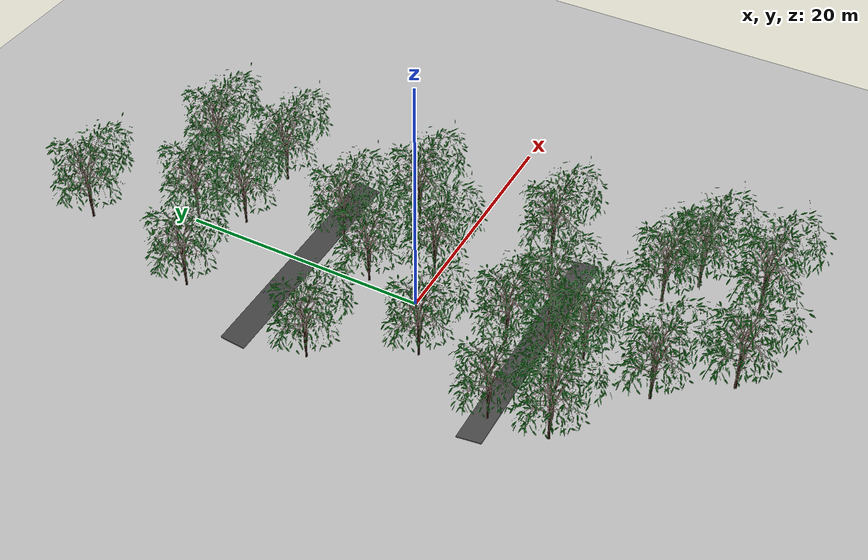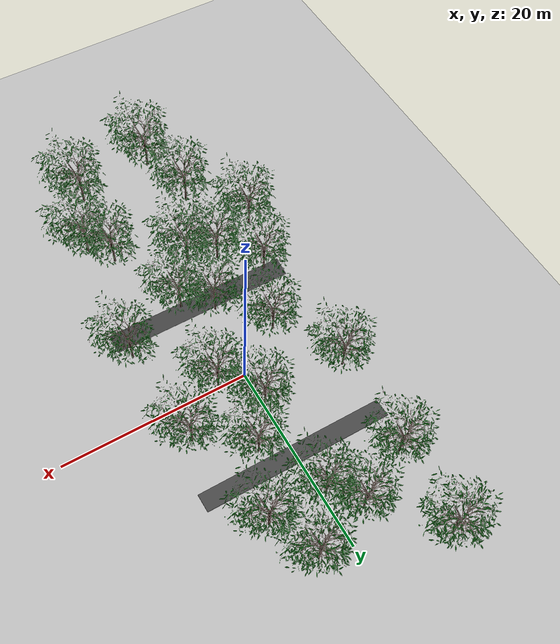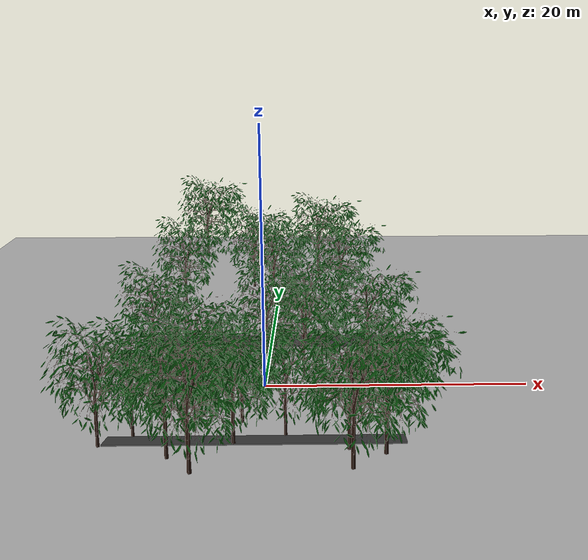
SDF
<?xml version="1.0" ?>
<sdf version="1.5">
  <world name="default">
    <!-- A global light source -->
    <include>
      <uri>model://sun</uri>
    </include>
    <!-- A ground plane -->
    <include>
      <uri>model://ground_plane</uri>
    </include>
    <include>
      <uri>model://asphalt_plane</uri>
    </include>
    <include>
      <uri>model://asphalt_plane</uri>
        <pose>0 19.378 2.474 0.25 0 0</pose>
    </include>
    <include>
      <uri>model://asphalt_plane_narrow</uri>
        <pose>0 9.8 0.1 0 -0.125 1.570796</pose>
    </include>
    <include>
      <uri>model://asphalt_plane</uri>
        <pose>0 -19.0 3.42898 -0.35 0 0</pose>
    </include>
    <include>
      <uri>model://asphalt_plane_narrow</uri>
        <pose>0 -9.6 0.15 0 0.175 1.570796</pose>
    </include>
    <include>
      <uri>model://tree</uri>
        <pose>3 0 0.7 0 0 0</pose>
    </include>
    <include>
      <uri>model://tree</uri>
        <pose>-9 4 0.7 0 0 0</pose>
    </include>
    <include>
      <uri>model://tree</uri>
        <pose>8 4 0.7 0 0 0</pose>
    </include>
    <include>
      <uri>model://tree</uri>
        <pose>0 4 0.7 0 0 0</pose>
    </include>
    <include>
      <uri>model://tree</uri>
        <pose>3 8 0.7 0 0 0</pose>
    </include>
    <include>
      <uri>model://tree</uri>
        <pose>0 15 1.93 0 0 0</pose>
    </include>
    <include>
      <uri>model://tree</uri>
        <pose>6 15 1.93 0 0 0</pose>
    </include>
    <include>
      <uri>model://tree</uri>
        <pose>-8 15 1.93 0 0 0</pose>
    </include>
    <include>
      <uri>model://tree</uri>
        <pose>-2 18 2.65 0 0 0</pose>
    </include>
    <include>
      <uri>model://tree</uri>
        <pose>4 20 3.17 0 0 0</pose>
    </include>
    <include>
      <uri>model://tree</uri>
        <pose>-7 24 4.163655 0 0 0</pose>
    </include>
    <include>
      <uri>model://tree</uri>
        <pose>-5 -3 0.7 0 0 0</pose>
    </include>
    <include>
      <uri>model://tree</uri>
        <pose>-1 -8 0.7 0 0 0</pose>
    </include>
    <include>
      <uri>model://tree</uri>
        <pose>9 -7 0.7 0 0 0</pose>
    </include>
    <include>
      <uri>model://tree</uri>
        <pose>2 -10 0.7 0 0 0</pose>
    </include>
    <include>
      <uri>model://tree</uri>
        <pose>-8 -10 0.7 0 0 0</pose>
    </include>
    <include>
      <uri>model://tree</uri>
        <pose>-1 -14 2.07159 0 0 0</pose>
    </include>
    <include>
      <uri>model://tree</uri>
        <pose>6 -17 3.10028 0 0 0</pose>
    </include>
    <include>
      <uri>model://tree</uri>
        <pose>-4 -13 1.72869 0 0 0</pose>
    </include>
    <include>
      <uri>model://tree</uri>
        <pose>8 -19 3.786 0 0 0</pose>
    </include>
    <include>
      <uri>model://tree</uri>
        <pose>-4 -20 4.1289 0 0 0</pose>
    </include>
    <include>
      <uri>model://tree</uri>
        <pose>-2 -25 5.8434 0 0 0</pose>
    </include>
    <include>
      <uri>model://tree</uri>
        <pose>6 -24 5.5005 0 0 0</pose>
    </include>
    <include>
      <uri>model://tree</uri>
        <pose>-9 -15 2.4144 0 0 0</pose>
    </include>

    <!-- Only one ROS interface plugin is required per world, as any other plugin can connect a Gazebo
         topic to a ROS topic (or vise versa). -->
    <plugin name="ros_interface_plugin" filename="librotors_gazebo_ros_interface_plugin.so"/>

    <physics name='default_physics' default='0' type='ode'>
      <gravity>0 0 -9.8066</gravity>
      <ode>
        <solver>
          <type>quick</type>
          <iters>10</iters>
          <sor>1.3</sor>
          <use_dynamic_moi_rescaling>0</use_dynamic_moi_rescaling>
        </solver>
        <constraints>
          <cfm>0</cfm>
          <erp>0.2</erp>
          <contact_max_correcting_vel>100</contact_max_correcting_vel>
          <contact_surface_layer>0.001</contact_surface_layer>
        </constraints>
      </ode>
      <max_step_size>0.002</max_step_size>
      <real_time_factor>1</real_time_factor>
      <real_time_update_rate>500</real_time_update_rate>
      <magnetic_field>6e-06 2.3e-05 -4.2e-05</magnetic_field>
    </physics>
  </world>
</sdf>

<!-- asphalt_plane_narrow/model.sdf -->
<sdf version="1.5">
  <model name="asphalt_plane_narrow">
    <static>true</static>
    <link name="link">
      <collision name="collision">
        <geometry>
          <box>
            <size>20 2 .1</size>
          </box>
        </geometry>
      </collision>
      <visual name="visual">
        <cast_shadows>false</cast_shadows>
        <geometry>
          <box>
            <size>2 20 .1</size>
          </box>
        </geometry>
        <material>
          <script>
            <uri>model://asphalt_plane_narrow/materials/scripts</uri>
            <uri>model://asphalt_plane_narrow/materials/textures</uri>
            <name>vrc/asphalt</name>
          </script>
        </material>
      </visual>
    </link>
  </model>
</sdf>

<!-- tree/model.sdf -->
<sdf version="1.5">
  <model name="tree">
    <pose>0 0 0.0  0 0 0</pose>
    <static>true</static>
    <link name="link">
      <inertial>
        <mass>40.0</mass>
        <inertia>
          <ixx>1</ixx>
          <ixy>0</ixy>
          <ixz>0</ixz>
          <iyy>1</iyy>
          <iyz>0</iyz>
          <izz>1</izz>
        </inertia>
      </inertial>

      <collision name="collision">
        <geometry>
          <box>
              <size>0.20 0.20 2.50</size>
          </box>
        </geometry>
      </collision>
      <visual name="visual">
        <geometry>
          <mesh>
            <uri>model://tree/meshes/tree.dae</uri>
          </mesh>
        </geometry>
      </visual>
    </link>
  </model>
</sdf>
